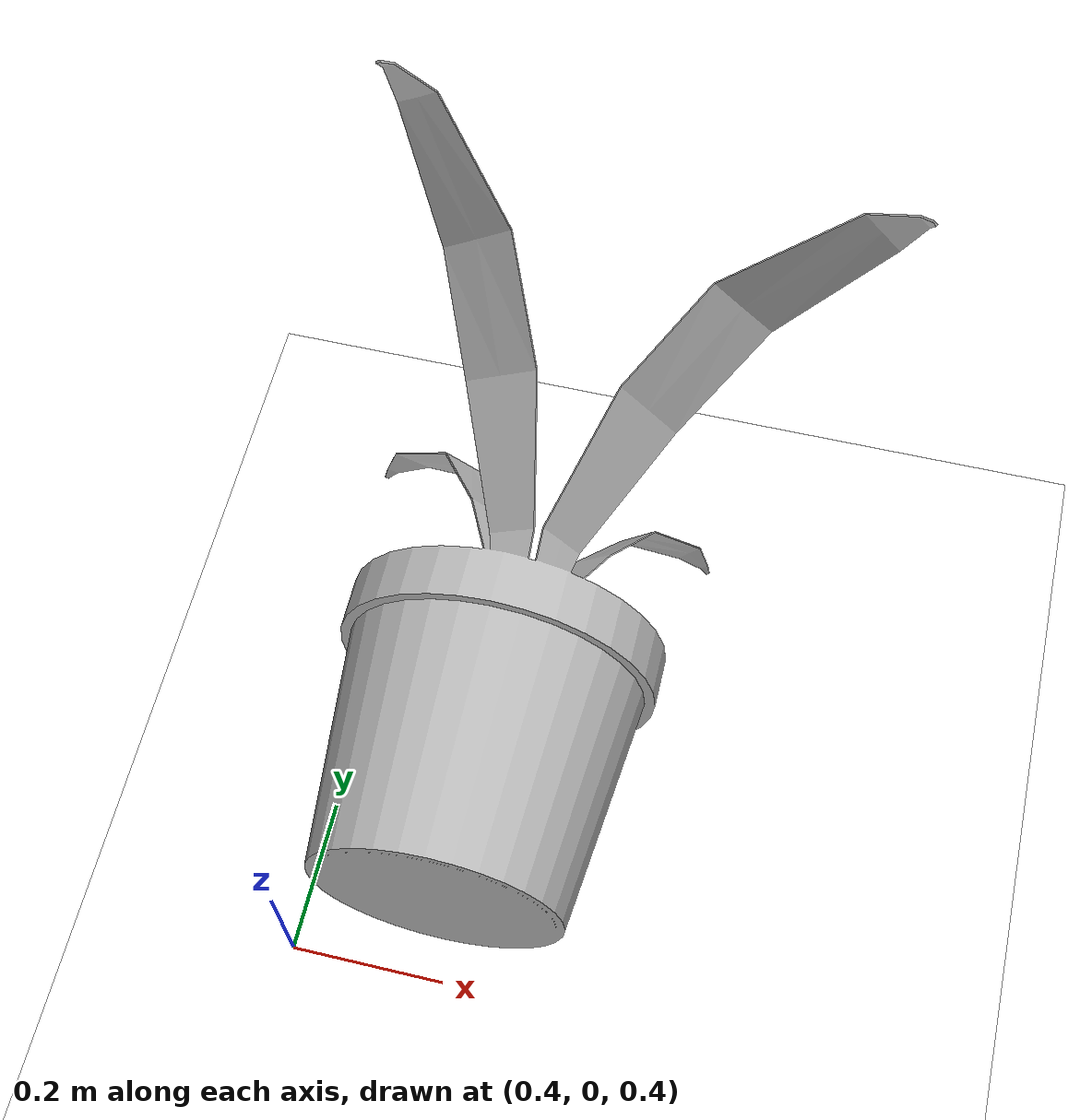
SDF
<?xml version="1.0" ?>
<sdf version="1.6">
  <world name="fixed_arm_empty">
    <gravity>0 0 -9.81</gravity>
    <scene>
      <ambient>0.6 0.6 0.6 1</ambient>
      <background>0.80 0.85 0.90 1</background>
      <shadows>false</shadows>
    </scene>

    <include>
      <uri>model://sun</uri>
    </include>

    <include>
      <uri>model://calibration_floor</uri>
    </include>

    <!-- Independent scene object; the fixed-arm URDF is intentionally untouched. -->
    <include>
      <uri>model://simple_potted_plant</uri>
      <name>plant_in_front_of_arm</name>
      <pose>0.60 0.00 0 0 0 0</pose>
    </include>

    <model name="rgbd_renderer">
      <static>true</static>
      <pose>0.4 0 0.8 0 0.6 0</pose>
      <link name="camera_link">
        <sensor name="handeye_rgbd_camera" type="depth">
          <always_on>true</always_on>
          <update_rate>5.0</update_rate>
          <visualize>false</visualize>
          <camera>
            <horizontal_fov>1.047</horizontal_fov>
            <image>
              <width>320</width>
              <height>240</height>
              <format>B8G8R8</format>
            </image>
            <depth_camera/>
            <clip>
              <near>0.1</near>
              <far>3.0</far>
            </clip>
          </camera>
          <plugin name="handeye_rgbd_camera_plugin" filename="libgazebo_ros_camera.so">
            <ros>
              <namespace>/camera</namespace>
              <remapping>color/depth/image_raw:=depth/image_raw</remapping>
              <remapping>color/depth/camera_info:=depth/camera_info</remapping>
              <remapping>color/points:=depth/color/points</remapping>
            </ros>
            <camera_name>color</camera_name>
            <frame_name>camera_depth_optical_frame</frame_name>
            <min_depth>0.1</min_depth>
            <max_depth>3.0</max_depth>
          </plugin>
        </sensor>
      </link>
    </model>

  </world>
</sdf>

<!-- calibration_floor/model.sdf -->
<sdf version="1.8">
  <model name="calibration_floor">
    <static>true</static>
    <link name="floor_link">
      <collision name="floor_collision">
        <geometry>
          <plane>
            <normal>0 0 1</normal>
            <size>4 4</size>
          </plane>
        </geometry>
        <surface>
          <friction>
            <ode>
              <mu>100</mu>
              <mu2>50</mu2>
            </ode>
          </friction>
        </surface>
      </collision>
      <visual name="floor_visual">
        <cast_shadows>false</cast_shadows>
        <geometry>
          <plane>
            <normal>0 0 1</normal>
            <size>4 4</size>
          </plane>
        </geometry>
        <material>
          <ambient>1 1 1 1</ambient>
          <diffuse>1 1 1 1</diffuse>
          <specular>0.1 0.1 0.1 1</specular>
          <pbr>
            <metal>
              <albedo_map>materials/textures/calibration_floor.png</albedo_map>
              <roughness>0.8</roughness>
              <metalness>0.0</metalness>
            </metal>
          </pbr>
        </material>
      </visual>
    </link>
  </model>
</sdf>

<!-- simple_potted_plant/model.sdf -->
<sdf version="1.6">
  <model name="simple_potted_plant">
    <static>true</static>
    <link name="plant_link">
      <!-- The source FBX was authored in centimetres; the DAE transform is scaled to metres. -->
      <visual name="plant_visual">
        <pose>0 0 0.78 0 0 0</pose>
        <geometry>
          <mesh>
            <uri>model://simple_potted_plant/meshes/FlowerPot.dae</uri>
            <scale>0.0015 0.0015 0.0015</scale>
          </mesh>
        </geometry>
      </visual>

      <!-- Keep contacts robust: use simple solids instead of the dense leaf mesh. -->
      <collision name="pot_collision">
        <pose>0 0 0.13 0 0 0</pose>
        <geometry>
          <cylinder>
            <radius>0.16</radius>
            <length>0.26</length>
          </cylinder>
        </geometry>
      </collision>
      <collision name="foliage_collision">
        <pose>0 0 0.48 0 0 0</pose>
        <geometry>
          <cylinder>
            <radius>0.28</radius>
            <length>0.50</length>
          </cylinder>
        </geometry>
      </collision>
    </link>
  </model>
</sdf>
